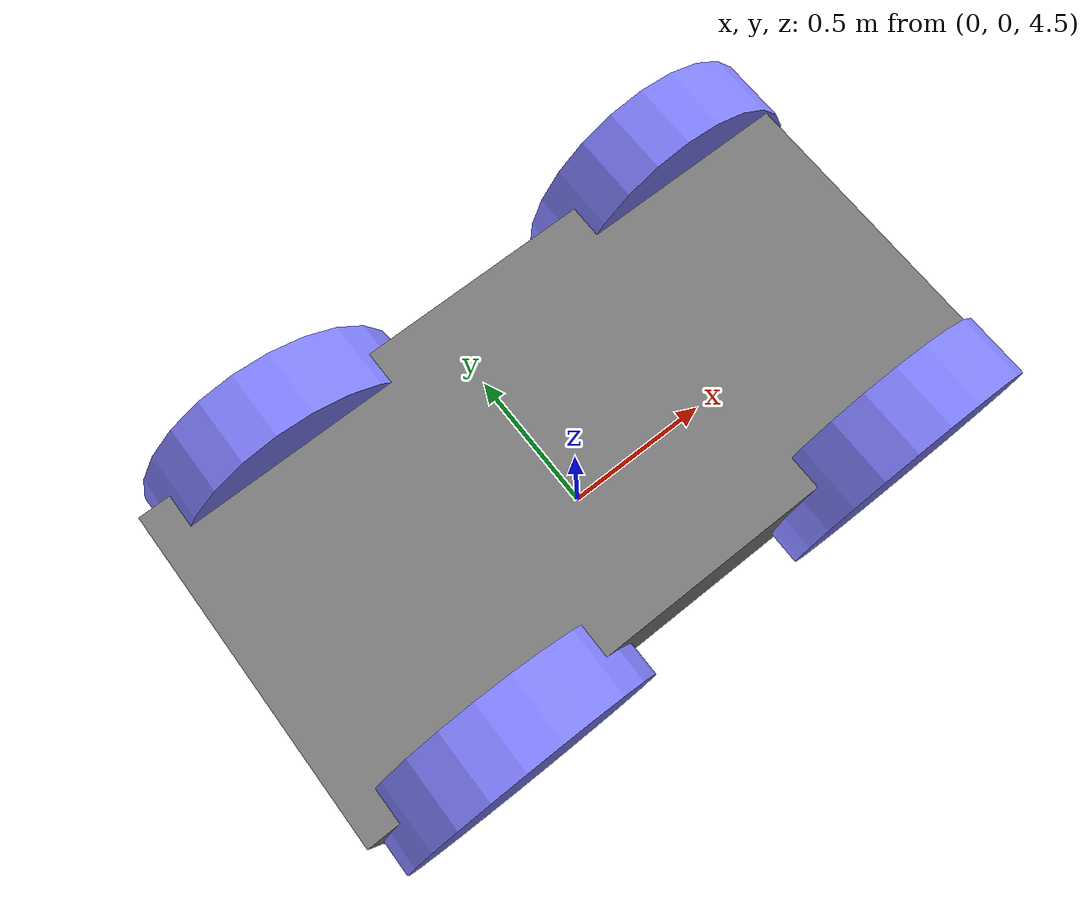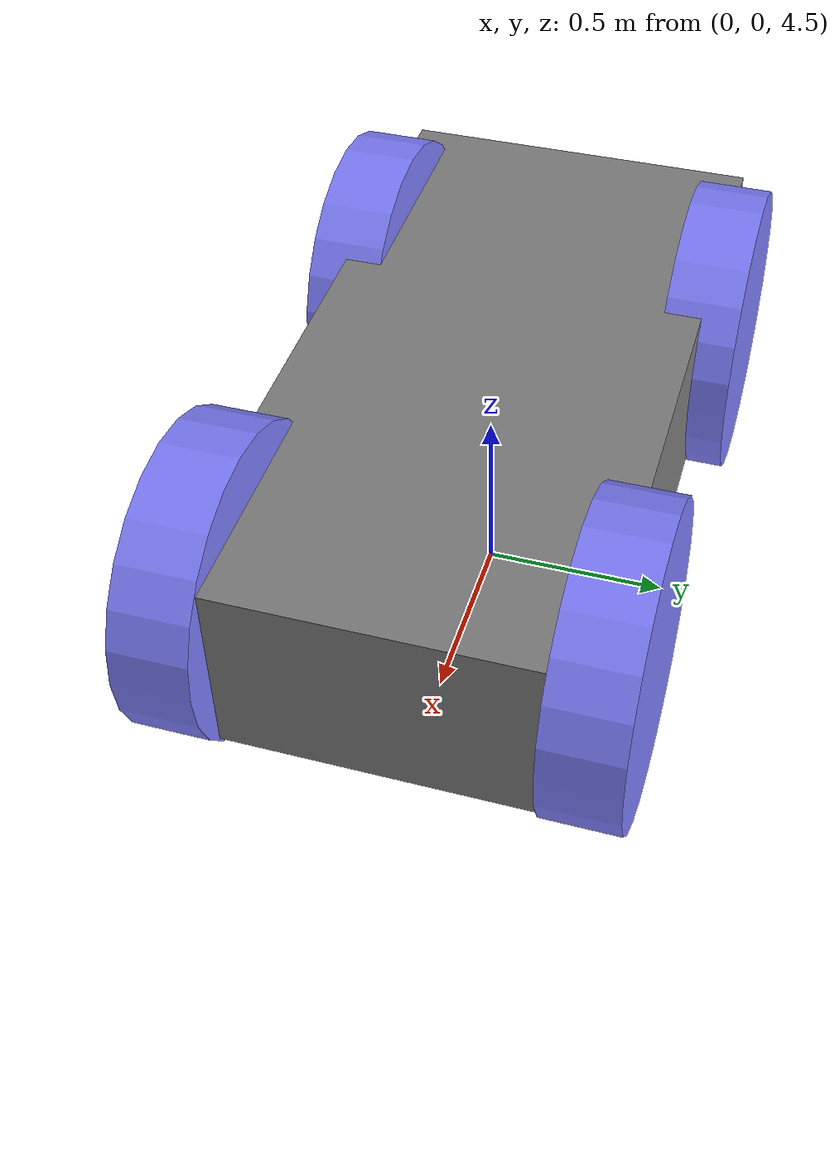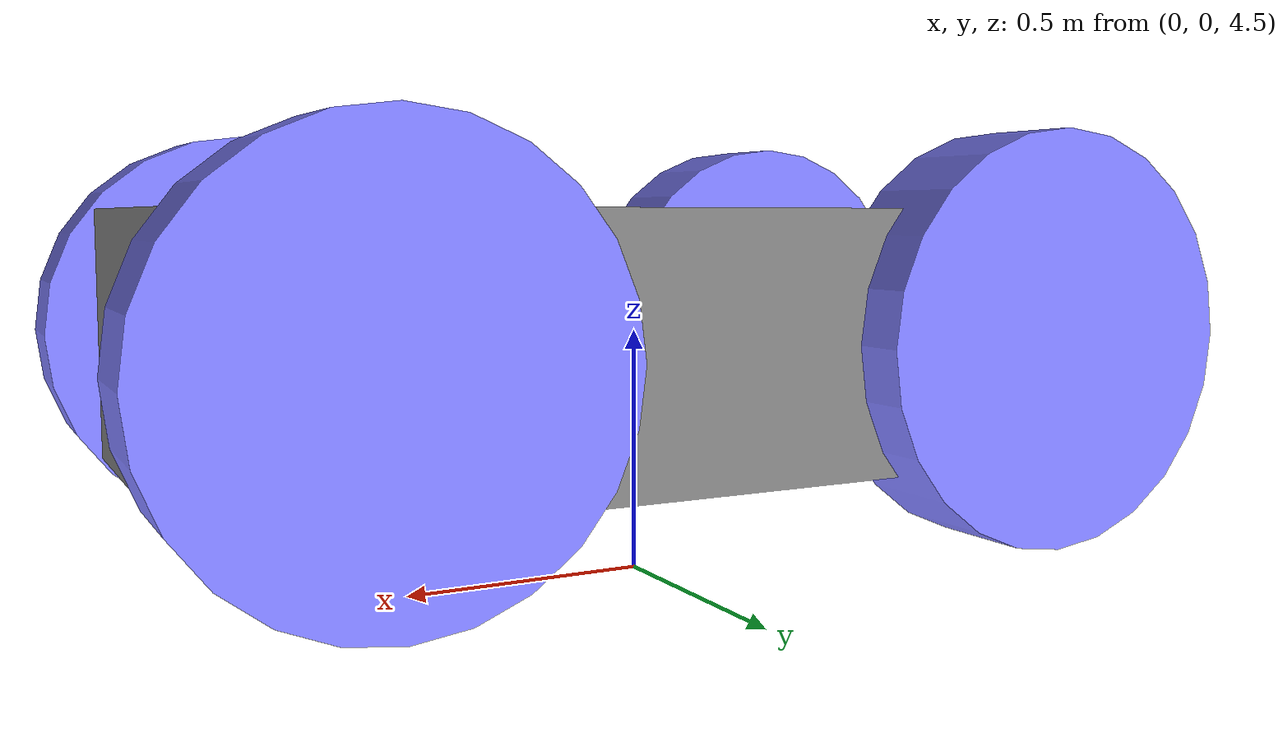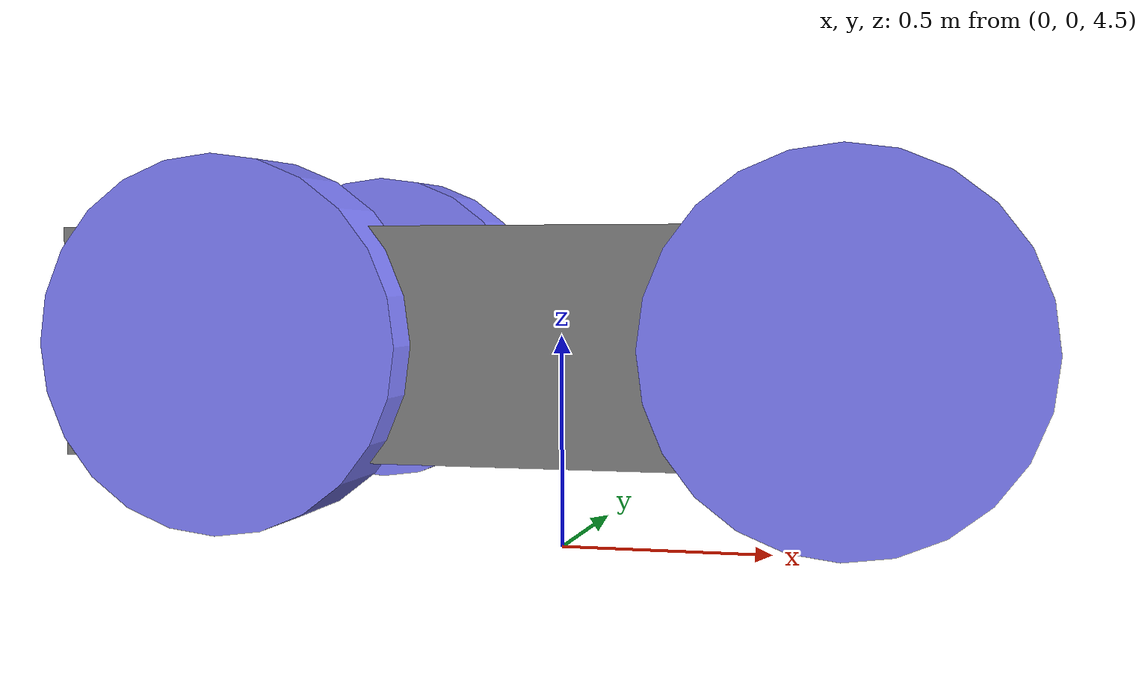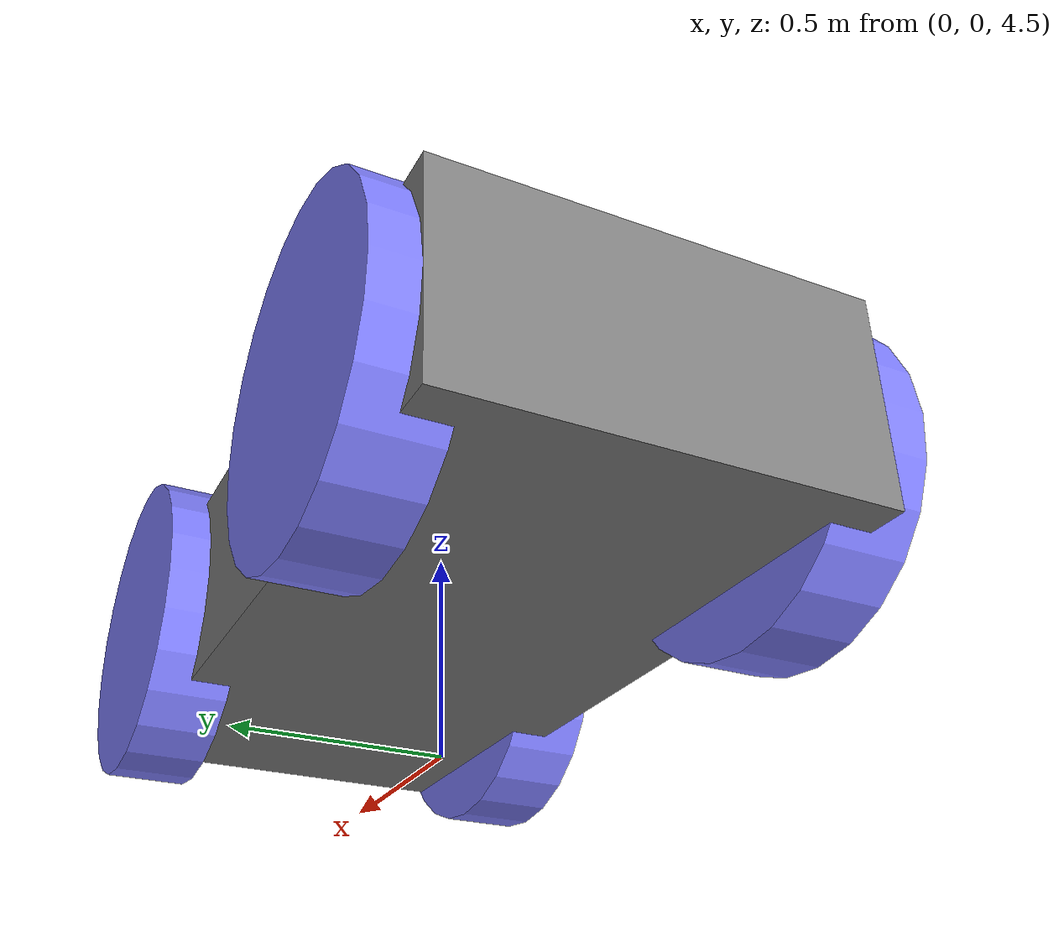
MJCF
<mujoco>
	<asset>
		<texture name="grid" type="2d" builtin="checker" width="512" height="512" rgb1=".1 .2 .3" rgb2=".2 .3 .4" />
		<material name="grid" texture="grid" texrepeat="1 1" texuniform="true" reflectance=".2" />
	</asset>
	<default>
		<joint damping=".03" actuatorfrcrange="-10000 10000" stiffness="0.01" />
		<default class="wheel">
			<geom type="cylinder" size="0.4 0.1" rgba=".5 .5 1 1" />
		</default>

		<default class="slidersite">
			<site type="cylinder" size=".01 .015" rgba="1 0 0 1" />
		</default>

        <site size=".05" rgba="0 0 1 1" />

		<default class="cranksite">
			<site size=".012" rgba="0 0 1 1" />
		</default>

	</default>
	<worldbody>
		<light dir="0 0 -1" pos="0 0 1000" diffuse="1 1 1" />
		<geom type="plane" size="100 100 .01" material="grid" />
		<body name="car" pos="0 0 5">
			<freejoint />
			<light dir="1 0 0" pos="1.2 0 0.125" diffuse="1 1 1" />
			<geom name="chasis" type="box" size="1 0.5 0.25" />
			<body name="back axis" pos="-0.6 0 0">
				<joint name="back axis joint" type="hinge" axis="0 1 0" />
				<geom type="cylinder" size="0.05 0.5" rgba=".5 .5 1 1" zaxis="0 1 0" />
				<body name="left back wheel" pos="0 0.5 0" zaxis="0 1 0">
					<geom class="wheel" />
				</body>
				<body name="right back wheel" pos="0 -0.5 0" zaxis="0 1 0">
					<geom class="wheel" />
				</body>
			</body>

			<body name="front axis" pos="0.6 0 0">
				<geom type="cylinder" size="0.05 0.5" rgba=".5 .5 1 1" zaxis="0 1 0" />

                <body name="left part" pos="0.1 0.5 0">
                    <joint type="hinge" pos="-0.1 0 0" axis="0 0 1" limited="true" range="-30 30"/>
                    <geom type="cylinder" size="0.05 0.1" rgba=".5 .5 1 1"  zaxis="1 0 0"/>
                    <site name="left site" pos="0.1 0 0"/>
                    <body name="left front wheel" pos="0 0 0" zaxis="0 1 0">
                        <joint name="left front joint" type="hinge" />
                        <geom class="wheel" />

				    </body>

                </body>

                <body name="right part" pos="0.1 -0.5 0">
                    <joint type="hinge" pos="-0.1 0 0" axis="0 0 1" limited="true" range="-30 30"/>
                    <geom type="cylinder" size="0.05 0.1" rgba=".5 .5 1 1"  zaxis="1 0 0"/>
                    <site name="right site" pos="0.1 0 0"/>
                    <body name="right front wheel" pos="0 0 0" zaxis="0 1 0">
                        <joint name="right front joint" type="hinge" />
                        <geom class="wheel" />

				    </body>

                </body>

                <body name="wheel" pos="0.2 0 0">
                    <geom type="box" size="0.05 0.3 0.05"/>
                    <site name="wheel site left" pos="0 .3 0"/>
                    <site name="wheel site right" pos="0 -.3 0"/>
                    <joint name="wheel joint" type="slide" axis="0 1 0" actuatorfrcrange="-100000 100000"/>
                </body>

                <site name="cranksite" class="cranksite" pos=".2 0 0"/>

			</body>
		</body>
		<camera name="cam1" pos="-5 0 10" euler="0 -45 -90" fovy="90" mode="trackcom" target="car" />
	</worldbody>

	<tendon>
		<fixed name="forward">
			<joint joint="back axis joint" coef="1000" />
		</fixed>

        <fixed name="steer">
			<joint joint="wheel joint" coef="1000" />
		</fixed>

        <spatial name="left wheel tendon" limited="true" range="0.1999 0.2" width="0.02" stiffness="0">
            <site site="left site"/>
            <site site="wheel site left"/>
        </spatial>

        <spatial name="right wheel tendon" limited="true" range="0.1999 0.2" width="0.02" stiffness="0">
            <site site="right site"/>
            <site site="wheel site right"/>
        </spatial>

	</tendon>

	<actuator>
		<motor name="forward motor" tendon="forward" ctrlrange="-1 1" />
        <position name="steer" cranksite="cranksite" slidersite="wheel site left" cranklength="0.1"/>
	</actuator>

    <contact>
        <exclude body1="car" body2="left front wheel"/>
        <exclude body1="front axis" body2="left front wheel"/>

        <exclude body1="car" body2="right front wheel"/>
        <exclude body1="front axis" body2="right front wheel"/>

        <exclude body1="wheel" body2="car"/>
    </contact>

</mujoco>
